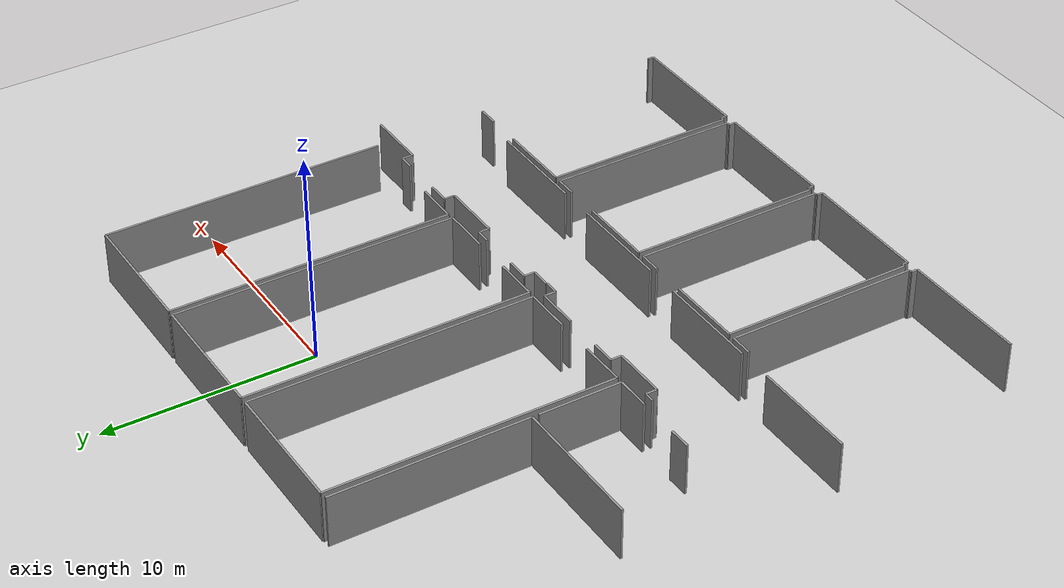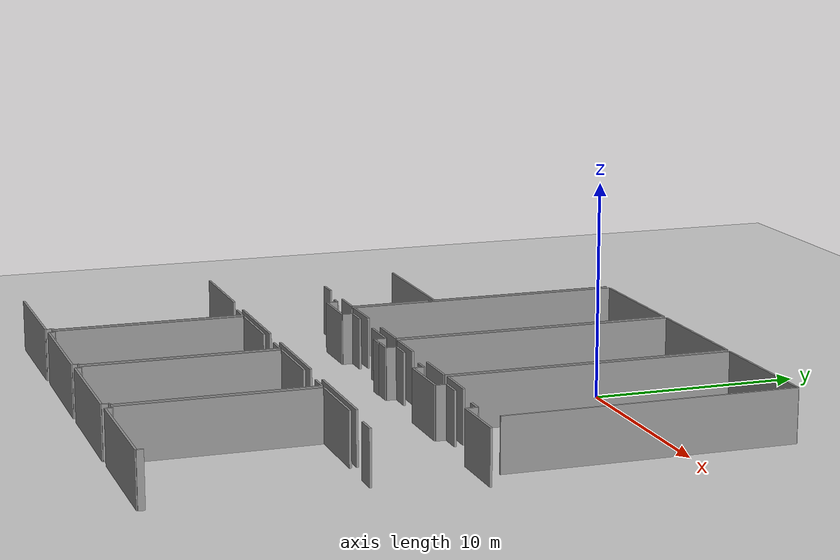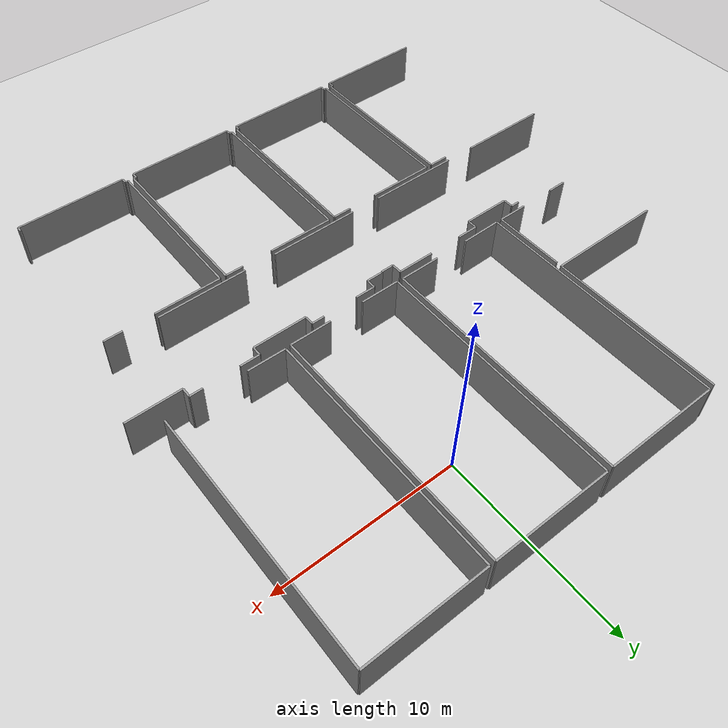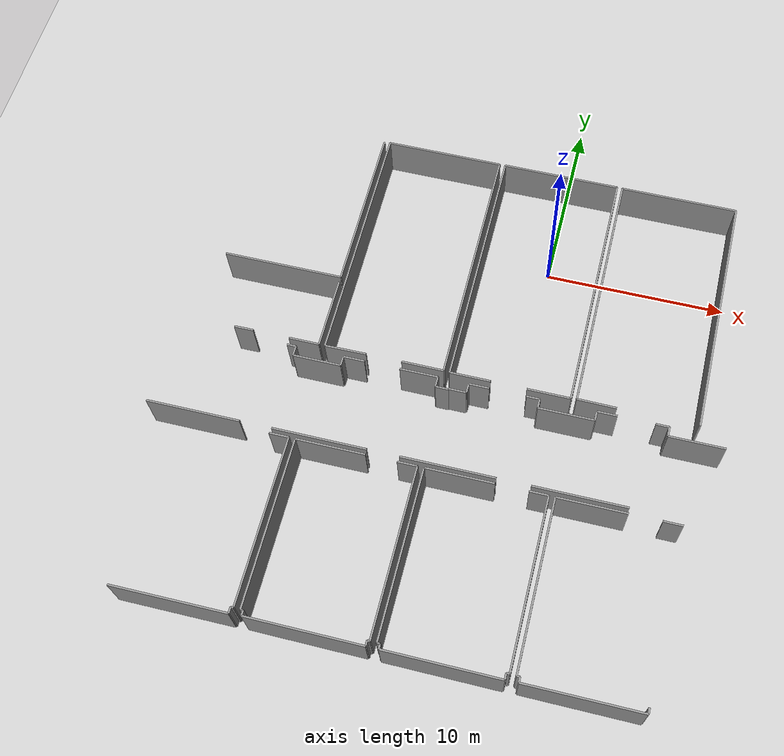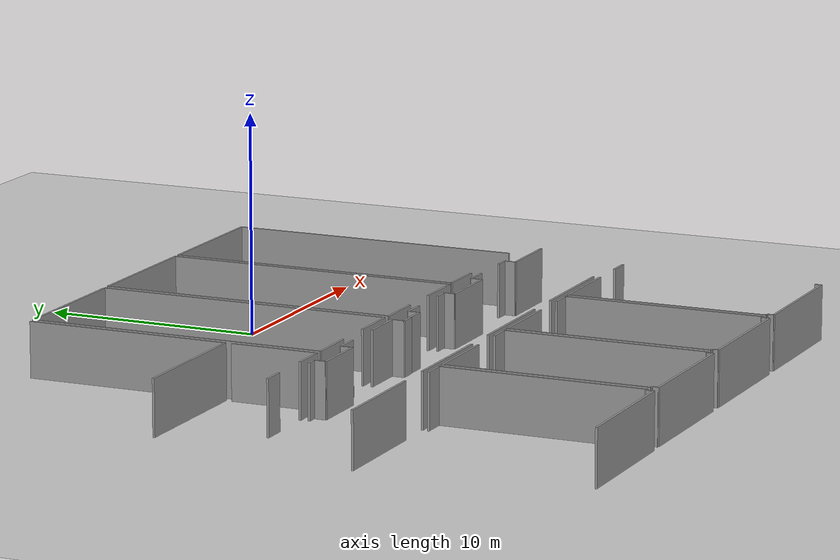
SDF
<sdf version="1.6">
 <world name="default">
  <model name="ground_plane">
   <static>1</static>
   <link name="link">
    <collision name="collision">
     <geometry><plane><normal>0 0 1</normal><size>100 100</size></plane></geometry>
     <surface><friction><ode><mu>100</mu><mu2>50</mu2></ode></friction></surface>
    </collision>
    <visual name="visual">
     <cast_shadows>0</cast_shadows>
     <geometry><plane><normal>0 0 1</normal><size>100 100</size></plane></geometry>
     <material>
      <script><uri>file://media/materials/scripts/gazebo.material</uri><name>Gazebo/Grey</name></script>
     </material>
    </visual>
   </link>
  </model>
  <model name="0510032194_A_40_1_202">
   <static>1</static>
   <link name="Wall_117">
    <collision name="Wall_117_Collision">
     <geometry><box><size>0.277529038937 0.1 2.5</size></box></geometry>
     <pose>0.138764519468 0 1.25 0 0 0</pose>
    </collision>
    <visual name="Wall_117_Visual">
     <pose>0.138764519468 0 1.25 0 0 0</pose>
     <geometry><box><size>0.277529038937 0.1 2.5</size></box></geometry>
     <material>
      <script><uri>file://media/materials/scripts/gazebo.material</uri><name>Gazebo/Grey</name></script>
      <ambient>1 1 1 1</ambient>
     </material>
    </visual>
    <pose>50.4956782949 -46.8585872057 0 0 0 1.57079632679</pose>
   </link>
   <link name="Wall_118">
    <collision name="Wall_118_Collision">
     <geometry><box><size>0.14606791523 0.1 2.5</size></box></geometry>
     <pose>0.0730339576149 0 1.25 0 0 0</pose>
    </collision>
    <visual name="Wall_118_Visual">
     <pose>0.0730339576149 0 1.25 0 0 0</pose>
     <geometry><box><size>0.14606791523 0.1 2.5</size></box></geometry>
     <material>
      <script><uri>file://media/materials/scripts/gazebo.material</uri><name>Gazebo/Grey</name></script>
      <ambient>1 1 1 1</ambient>
     </material>
    </visual>
    <pose>50.4956782949 -46.5810581668 0 0 0 3.14159265359</pose>
   </link>
   <link name="Wall_119">
    <collision name="Wall_119_Collision">
     <geometry><box><size>9.18767186795 0.1 2.5</size></box></geometry>
     <pose>4.59383593398 0 1.25 0 0 0</pose>
    </collision>
    <visual name="Wall_119_Visual">
     <pose>4.59383593398 0 1.25 0 0 0</pose>
     <geometry><box><size>9.18767186795 0.1 2.5</size></box></geometry>
     <material>
      <script><uri>file://media/materials/scripts/gazebo.material</uri><name>Gazebo/Grey</name></script>
      <ambient>1 1 1 1</ambient>
     </material>
    </visual>
    <pose>50.3496103797 -46.5810581668 0 0 0 1.57079632679</pose>
   </link>
   <link name="Wall_120">
    <collision name="Wall_120_Collision">
     <geometry><box><size>3.73933862988 0.1 2.5</size></box></geometry>
     <pose>1.86966931494 0 1.25 0 0 0</pose>
    </collision>
    <visual name="Wall_120_Visual">
     <pose>1.86966931494 0 1.25 0 0 0</pose>
     <geometry><box><size>3.73933862988 0.1 2.5</size></box></geometry>
     <material>
      <script><uri>file://media/materials/scripts/gazebo.material</uri><name>Gazebo/Grey</name></script>
      <ambient>1 1 1 1</ambient>
     </material>
    </visual>
    <pose>50.3496103797 -37.3933862988 0 0 0 0.0</pose>
   </link>
   <link name="Wall_121">
    <collision name="Wall_121_Collision">
     <geometry><box><size>1.06629578118 0.1 2.5</size></box></geometry>
     <pose>0.533147890589 0 1.25 0 0 0</pose>
    </collision>
    <visual name="Wall_121_Visual">
     <pose>0.533147890589 0 1.25 0 0 0</pose>
     <geometry><box><size>1.06629578118 0.1 2.5</size></box></geometry>
     <material>
      <script><uri>file://media/materials/scripts/gazebo.material</uri><name>Gazebo/Grey</name></script>
      <ambient>1 1 1 1</ambient>
     </material>
    </visual>
    <pose>55.7541232432 -37.3933862988 0 0 0 0.0</pose>
   </link>
   <link name="Wall_122">
    <collision name="Wall_122_Collision">
     <geometry><box><size>9.21116974997 0.1 2.5</size></box></geometry>
     <pose>4.60558487498 0 1.25 0 0 0</pose>
    </collision>
    <visual name="Wall_122_Visual">
     <pose>4.60558487498 0 1.25 0 0 0</pose>
     <geometry><box><size>9.21116974997 0.1 2.5</size></box></geometry>
     <material>
      <script><uri>file://media/materials/scripts/gazebo.material</uri><name>Gazebo/Grey</name></script>
      <ambient>1 1 1 1</ambient>
     </material>
    </visual>
    <pose>56.8204190244 -37.3933862988 0 0 0 -1.57079632679</pose>
   </link>
   <link name="Wall_123">
    <collision name="Wall_123_Collision">
     <geometry><box><size>0.132223217178 0.1 2.5</size></box></geometry>
     <pose>0.0661116085888 0 1.25 0 0 0</pose>
    </collision>
    <visual name="Wall_123_Visual">
     <pose>0.0661116085888 0 1.25 0 0 0</pose>
     <geometry><box><size>0.132223217178 0.1 2.5</size></box></geometry>
     <material>
      <script><uri>file://media/materials/scripts/gazebo.material</uri><name>Gazebo/Grey</name></script>
      <ambient>1 1 1 1</ambient>
     </material>
    </visual>
    <pose>56.8204190244 -46.6045560488 0 0 0 3.14159265359</pose>
   </link>
   <link name="Wall_124">
    <collision name="Wall_124_Collision">
     <geometry><box><size>0.288198347527 0.1 2.5</size></box></geometry>
     <pose>0.144099173764 0 1.25 0 0 0</pose>
    </collision>
    <visual name="Wall_124_Visual">
     <pose>0.144099173764 0 1.25 0 0 0</pose>
     <geometry><box><size>0.288198347527 0.1 2.5</size></box></geometry>
     <material>
      <script><uri>file://media/materials/scripts/gazebo.material</uri><name>Gazebo/Grey</name></script>
      <ambient>1 1 1 1</ambient>
     </material>
    </visual>
    <pose>56.6881958072 -46.6045560488 0 0 0 -1.57079632679</pose>
   </link>
   <link name="Wall_125">
    <collision name="Wall_125_Collision">
     <geometry><box><size>6.19261177022 0.1 2.5</size></box></geometry>
     <pose>3.09630588511 0 1.25 0 0 0</pose>
    </collision>
    <visual name="Wall_125_Visual">
     <pose>3.09630588511 0 1.25 0 0 0</pose>
     <geometry><box><size>6.19261177022 0.1 2.5</size></box></geometry>
     <material>
      <script><uri>file://media/materials/scripts/gazebo.material</uri><name>Gazebo/Grey</name></script>
      <ambient>1 1 1 1</ambient>
     </material>
    </visual>
    <pose>56.6881958072 -46.8927543963 0 0 0 3.13607521358</pose>
   </link>
   <link name="Wall_130">
    <collision name="Wall_130_Collision">
     <geometry><box><size>1.06604175002 0.1 2.5</size></box></geometry>
     <pose>0.53302087501 0 1.25 0 0 0</pose>
    </collision>
    <visual name="Wall_130_Visual">
     <pose>0.53302087501 0 1.25 0 0 0</pose>
     <geometry><box><size>1.06604175002 0.1 2.5</size></box></geometry>
     <material>
      <script><uri>file://media/materials/scripts/gazebo.material</uri><name>Gazebo/Grey</name></script>
      <ambient>1 1 1 1</ambient>
     </material>
    </visual>
    <pose>48.9377052095 -37.3844952083 0 0 0 0.0</pose>
   </link>
   <link name="Wall_131">
    <collision name="Wall_131_Collision">
     <geometry><box><size>9.18170213577 0.1 2.5</size></box></geometry>
     <pose>4.59085106788 0 1.25 0 0 0</pose>
    </collision>
    <visual name="Wall_131_Visual">
     <pose>4.59085106788 0 1.25 0 0 0</pose>
     <geometry><box><size>9.18170213577 0.1 2.5</size></box></geometry>
     <material>
      <script><uri>file://media/materials/scripts/gazebo.material</uri><name>Gazebo/Grey</name></script>
      <ambient>1 1 1 1</ambient>
     </material>
    </visual>
    <pose>50.0037469596 -37.3844952083 0 0 0 -1.57079632679</pose>
   </link>
   <link name="Wall_132">
    <collision name="Wall_132_Collision">
     <geometry><box><size>0.144035665974 0.1 2.5</size></box></geometry>
     <pose>0.0720178329872 0 1.25 0 0 0</pose>
    </collision>
    <visual name="Wall_132_Visual">
     <pose>0.0720178329872 0 1.25 0 0 0</pose>
     <geometry><box><size>0.144035665974 0.1 2.5</size></box></geometry>
     <material>
      <script><uri>file://media/materials/scripts/gazebo.material</uri><name>Gazebo/Grey</name></script>
      <ambient>1 1 1 1</ambient>
     </material>
    </visual>
    <pose>50.0037469596 -46.5661973441 0 0 0 3.14159265359</pose>
   </link>
   <link name="Wall_133">
    <collision name="Wall_133_Collision">
     <geometry><box><size>0.326557052222 0.1 2.5</size></box></geometry>
     <pose>0.163278526111 0 1.25 0 0 0</pose>
    </collision>
    <visual name="Wall_133_Visual">
     <pose>0.163278526111 0 1.25 0 0 0</pose>
     <geometry><box><size>0.326557052222 0.1 2.5</size></box></geometry>
     <material>
      <script><uri>file://media/materials/scripts/gazebo.material</uri><name>Gazebo/Grey</name></script>
      <ambient>1 1 1 1</ambient>
     </material>
    </visual>
    <pose>49.8597112936 -46.5661973441 0 0 0 -1.57079632679</pose>
   </link>
   <link name="Wall_134">
    <collision name="Wall_134_Collision">
     <geometry><box><size>6.18515794467 0.1 2.5</size></box></geometry>
     <pose>3.09257897233 0 1.25 0 0 0</pose>
    </collision>
    <visual name="Wall_134_Visual">
     <pose>3.09257897233 0 1.25 0 0 0</pose>
     <geometry><box><size>6.18515794467 0.1 2.5</size></box></geometry>
     <material>
      <script><uri>file://media/materials/scripts/gazebo.material</uri><name>Gazebo/Grey</name></script>
      <ambient>1 1 1 1</ambient>
     </material>
    </visual>
    <pose>49.8597112936 -46.8927543963 0 0 0 -3.14005248724</pose>
   </link>
   <link name="Wall_135">
    <collision name="Wall_135_Collision">
     <geometry><box><size>0.268891979601 0.1 2.5</size></box></geometry>
     <pose>0.134445989801 0 1.25 0 0 0</pose>
    </collision>
    <visual name="Wall_135_Visual">
     <pose>0.134445989801 0 1.25 0 0 0</pose>
     <geometry><box><size>0.268891979601 0.1 2.5</size></box></geometry>
     <material>
      <script><uri>file://media/materials/scripts/gazebo.material</uri><name>Gazebo/Grey</name></script>
      <ambient>1 1 1 1</ambient>
     </material>
    </visual>
    <pose>57.3317837433 -46.8831012124 0 0 0 1.57079632679</pose>
   </link>
   <link name="Wall_136">
    <collision name="Wall_136_Collision">
     <geometry><box><size>0.1633420339 0.1 2.5</size></box></geometry>
     <pose>0.0816710169502 0 1.25 0 0 0</pose>
    </collision>
    <visual name="Wall_136_Visual">
     <pose>0.0816710169502 0 1.25 0 0 0</pose>
     <geometry><box><size>0.1633420339 0.1 2.5</size></box></geometry>
     <material>
      <script><uri>file://media/materials/scripts/gazebo.material</uri><name>Gazebo/Grey</name></script>
      <ambient>1 1 1 1</ambient>
     </material>
    </visual>
    <pose>57.3317837433 -46.6142092328 0 0 0 3.14159265359</pose>
   </link>
   <link name="Wall_137">
    <collision name="Wall_137_Collision">
     <geometry><box><size>9.22006084046 0.1 2.5</size></box></geometry>
     <pose>4.61003042023 0 1.25 0 0 0</pose>
    </collision>
    <visual name="Wall_137_Visual">
     <pose>4.61003042023 0 1.25 0 0 0</pose>
     <geometry><box><size>9.22006084046 0.1 2.5</size></box></geometry>
     <material>
      <script><uri>file://media/materials/scripts/gazebo.material</uri><name>Gazebo/Grey</name></script>
      <ambient>1 1 1 1</ambient>
     </material>
    </visual>
    <pose>57.1684417094 -46.6142092328 0 0 0 1.57079632679</pose>
   </link>
   <link name="Wall_138">
    <collision name="Wall_138_Collision">
     <geometry><box><size>3.69767752015 0.1 2.5</size></box></geometry>
     <pose>1.84883876007 0 1.25 0 0 0</pose>
    </collision>
    <visual name="Wall_138_Visual">
     <pose>1.84883876007 0 1.25 0 0 0</pose>
     <geometry><box><size>3.69767752015 0.1 2.5</size></box></geometry>
     <material>
      <script><uri>file://media/materials/scripts/gazebo.material</uri><name>Gazebo/Grey</name></script>
      <ambient>1 1 1 1</ambient>
     </material>
    </visual>
    <pose>57.1684417094 -37.3941483923 0 0 0 0.0</pose>
   </link>
   <link name="Wall_139">
    <collision name="Wall_139_Collision">
     <geometry><box><size>1.01612462769 0.1 2.5</size></box></geometry>
     <pose>0.508062313843 0 1.25 0 0 0</pose>
    </collision>
    <visual name="Wall_139_Visual">
     <pose>0.508062313843 0 1.25 0 0 0</pose>
     <geometry><box><size>1.01612462769 0.1 2.5</size></box></geometry>
     <material>
      <script><uri>file://media/materials/scripts/gazebo.material</uri><name>Gazebo/Grey</name></script>
      <ambient>1 1 1 1</ambient>
     </material>
    </visual>
    <pose>62.619315259 -37.3941483923 0 0 0 0.0</pose>
   </link>
   <link name="Wall_140">
    <collision name="Wall_140_Collision">
     <geometry><box><size>9.17865376188 0.1 2.5</size></box></geometry>
     <pose>4.58932688094 0 1.25 0 0 0</pose>
    </collision>
    <visual name="Wall_140_Visual">
     <pose>4.58932688094 0 1.25 0 0 0</pose>
     <geometry><box><size>9.17865376188 0.1 2.5</size></box></geometry>
     <material>
      <script><uri>file://media/materials/scripts/gazebo.material</uri><name>Gazebo/Grey</name></script>
      <ambient>1 1 1 1</ambient>
     </material>
    </visual>
    <pose>63.6354398867 -37.3941483923 0 0 0 -1.57079632679</pose>
   </link>
   <link name="Wall_141">
    <collision name="Wall_141_Collision">
     <geometry><box><size>0.165120251999 0.1 2.5</size></box></geometry>
     <pose>0.0825601259994 0 1.25 0 0 0</pose>
    </collision>
    <visual name="Wall_141_Visual">
     <pose>0.0825601259994 0 1.25 0 0 0</pose>
     <geometry><box><size>0.165120251999 0.1 2.5</size></box></geometry>
     <material>
      <script><uri>file://media/materials/scripts/gazebo.material</uri><name>Gazebo/Grey</name></script>
      <ambient>1 1 1 1</ambient>
     </material>
    </visual>
    <pose>63.6354398867 -46.5728021542 0 0 0 3.14159265359</pose>
   </link>
   <link name="Wall_142">
    <collision name="Wall_142_Collision">
     <geometry><box><size>0.335575158293 0.1 2.5</size></box></geometry>
     <pose>0.167787579147 0 1.25 0 0 0</pose>
    </collision>
    <visual name="Wall_142_Visual">
     <pose>0.167787579147 0 1.25 0 0 0</pose>
     <geometry><box><size>0.335575158293 0.1 2.5</size></box></geometry>
     <material>
      <script><uri>file://media/materials/scripts/gazebo.material</uri><name>Gazebo/Grey</name></script>
      <ambient>1 1 1 1</ambient>
     </material>
    </visual>
    <pose>63.4703196347 -46.5728021542 0 0 0 -1.57079632679</pose>
   </link>
   <link name="Wall_143">
    <collision name="Wall_143_Collision">
     <geometry><box><size>6.13858792977 0.1 2.5</size></box></geometry>
     <pose>3.06929396489 0 1.25 0 0 0</pose>
    </collision>
    <visual name="Wall_143_Visual">
     <pose>3.06929396489 0 1.25 0 0 0</pose>
     <geometry><box><size>6.13858792977 0.1 2.5</size></box></geometry>
     <material>
      <script><uri>file://media/materials/scripts/gazebo.material</uri><name>Gazebo/Grey</name></script>
      <ambient>1 1 1 1</ambient>
     </material>
    </visual>
    <pose>63.4703196347 -46.9083773125 0 0 0 3.13747506632</pose>
   </link>
   <link name="Wall_144">
    <collision name="Wall_144_Collision">
     <geometry><box><size>0.288071331949 0.1 2.5</size></box></geometry>
     <pose>0.144035665974 0 1.25 0 0 0</pose>
    </collision>
    <visual name="Wall_144_Visual">
     <pose>0.144035665974 0 1.25 0 0 0</pose>
     <geometry><box><size>0.288071331949 0.1 2.5</size></box></geometry>
     <material>
      <script><uri>file://media/materials/scripts/gazebo.material</uri><name>Gazebo/Grey</name></script>
      <ambient>1 1 1 1</ambient>
     </material>
    </visual>
    <pose>64.1410889046 -46.8831012124 0 0 0 1.57079632679</pose>
   </link>
   <link name="Wall_145">
    <collision name="Wall_145_Collision">
     <geometry><box><size>0.172868202285 0.1 2.5</size></box></geometry>
     <pose>0.0864341011425 0 1.25 0 0 0</pose>
    </collision>
    <visual name="Wall_145_Visual">
     <pose>0.0864341011425 0 1.25 0 0 0</pose>
     <geometry><box><size>0.172868202285 0.1 2.5</size></box></geometry>
     <material>
      <script><uri>file://media/materials/scripts/gazebo.material</uri><name>Gazebo/Grey</name></script>
      <ambient>1 1 1 1</ambient>
     </material>
    </visual>
    <pose>64.1410889046 -46.5950298804 0 0 0 3.14159265359</pose>
   </link>
   <link name="Wall_146">
    <collision name="Wall_146_Collision">
     <geometry><box><size>9.19122830415 0.1 2.5</size></box></geometry>
     <pose>4.59561415208 0 1.25 0 0 0</pose>
    </collision>
    <visual name="Wall_146_Visual">
     <pose>4.59561415208 0 1.25 0 0 0</pose>
     <geometry><box><size>9.19122830415 0.1 2.5</size></box></geometry>
     <material>
      <script><uri>file://media/materials/scripts/gazebo.material</uri><name>Gazebo/Grey</name></script>
      <ambient>1 1 1 1</ambient>
     </material>
    </visual>
    <pose>63.9682207023 -46.5950298804 0 0 0 1.57079632679</pose>
   </link>
   <link name="Wall_147">
    <collision name="Wall_147_Collision">
     <geometry><box><size>3.73413099117 0.1 2.5</size></box></geometry>
     <pose>1.86706549558 0 1.25 0 0 0</pose>
    </collision>
    <visual name="Wall_147_Visual">
     <pose>1.86706549558 0 1.25 0 0 0</pose>
     <geometry><box><size>3.73413099117 0.1 2.5</size></box></geometry>
     <material>
      <script><uri>file://media/materials/scripts/gazebo.material</uri><name>Gazebo/Grey</name></script>
      <ambient>1 1 1 1</ambient>
     </material>
    </visual>
    <pose>63.9682207023 -37.4038015763 0 0 0 0.0</pose>
   </link>
   <link name="Wall_148">
    <collision name="Wall_148_Collision">
     <geometry><box><size>1.03568502677 0.1 2.5</size></box></geometry>
     <pose>0.517842513384 0 1.25 0 0 0</pose>
    </collision>
    <visual name="Wall_148_Visual">
     <pose>0.517842513384 0 1.25 0 0 0</pose>
     <geometry><box><size>1.03568502677 0.1 2.5</size></box></geometry>
     <material>
      <script><uri>file://media/materials/scripts/gazebo.material</uri><name>Gazebo/Grey</name></script>
      <ambient>1 1 1 1</ambient>
     </material>
    </visual>
    <pose>69.4354792615 -37.4038015763 0 0 0 0.0</pose>
   </link>
   <link name="Wall_151">
    <collision name="Wall_151_Collision">
     <geometry><box><size>0.304964403884 0.1 2.5</size></box></geometry>
     <pose>0.152482201942 0 1.25 0 0 0</pose>
    </collision>
    <visual name="Wall_151_Visual">
     <pose>0.152482201942 0 1.25 0 0 0</pose>
     <geometry><box><size>0.304964403884 0.1 2.5</size></box></geometry>
     <material>
      <script><uri>file://media/materials/scripts/gazebo.material</uri><name>Gazebo/Grey</name></script>
      <ambient>1 1 1 1</ambient>
     </material>
    </visual>
    <pose>70.3022335689 -46.5889331326 0 0 0 -1.57079632679</pose>
   </link>
   <link name="Wall_152">
    <collision name="Wall_152_Collision">
     <geometry><box><size>6.16115412372 0.1 2.5</size></box></geometry>
     <pose>3.08057706186 0 1.25 0 0 0</pose>
    </collision>
    <visual name="Wall_152_Visual">
     <pose>3.08057706186 0 1.25 0 0 0</pose>
     <geometry><box><size>6.16115412372 0.1 2.5</size></box></geometry>
     <material>
      <script><uri>file://media/materials/scripts/gazebo.material</uri><name>Gazebo/Grey</name></script>
      <ambient>1 1 1 1</ambient>
     </material>
    </visual>
    <pose>70.3022335689 -46.8938975365 0 0 0 3.13984033098</pose>
   </link>
   <link name="Wall_228">
    <collision name="Wall_228_Collision">
     <geometry><box><size>9.30706651171 0.1 2.5</size></box></geometry>
     <pose>4.65353325585 0 1.25 0 0 0</pose>
    </collision>
    <visual name="Wall_228_Visual">
     <pose>4.65353325585 0 1.25 0 0 0</pose>
     <geometry><box><size>9.30706651171 0.1 2.5</size></box></geometry>
     <material>
      <script><uri>file://media/materials/scripts/gazebo.material</uri><name>Gazebo/Grey</name></script>
      <ambient>1 1 1 1</ambient>
     </material>
    </visual>
    <pose>50.0061602556 -18.2818602702 0 0 0 -1.57079632679</pose>
   </link>
   <link name="Wall_229">
    <collision name="Wall_229_Collision">
     <geometry><box><size>6.58270976634 0.1 2.5</size></box></geometry>
     <pose>3.29135488317 0 1.25 0 0 0</pose>
    </collision>
    <visual name="Wall_229_Visual">
     <pose>3.29135488317 0 1.25 0 0 0</pose>
     <geometry><box><size>6.58270976634 0.1 2.5</size></box></geometry>
     <material>
      <script><uri>file://media/materials/scripts/gazebo.material</uri><name>Gazebo/Grey</name></script>
      <ambient>1 1 1 1</ambient>
     </material>
    </visual>
    <pose>50.0061602556 -27.5889267819 0 0 0 -3.14124533758</pose>
   </link>
   <link name="Wall_234">
    <collision name="Wall_234_Collision">
     <geometry><box><size>3.9574243781 0.1 2.5</size></box></geometry>
     <pose>1.97871218905 0 1.25 0 0 0</pose>
    </collision>
    <visual name="Wall_234_Visual">
     <pose>1.97871218905 0 1.25 0 0 0</pose>
     <geometry><box><size>3.9574243781 0.1 2.5</size></box></geometry>
     <material>
      <script><uri>file://media/materials/scripts/gazebo.material</uri><name>Gazebo/Grey</name></script>
      <ambient>1 1 1 1</ambient>
     </material>
    </visual>
    <pose>50.0037469596 -27.8893186249 0 0 0 -1.57079632679</pose>
   </link>
   <link name="Wall_235">
    <collision name="Wall_235_Collision">
     <geometry><box><size>1.66225287532 0.1 2.5</size></box></geometry>
     <pose>0.831126437658 0 1.25 0 0 0</pose>
    </collision>
    <visual name="Wall_235_Visual">
     <pose>0.831126437658 0 1.25 0 0 0</pose>
     <geometry><box><size>1.66225287532 0.1 2.5</size></box></geometry>
     <material>
      <script><uri>file://media/materials/scripts/gazebo.material</uri><name>Gazebo/Grey</name></script>
      <ambient>1 1 1 1</ambient>
     </material>
    </visual>
    <pose>50.0037469596 -31.846743003 0 0 0 3.14159265359</pose>
   </link>
   <link name="Wall_236">
    <collision name="Wall_236_Collision">
     <geometry><box><size>1.06927037063 0.1 2.5</size></box></geometry>
     <pose>0.534635185315 0 1.25 0 0 0</pose>
    </collision>
    <visual name="Wall_236_Visual">
     <pose>0.534635185315 0 1.25 0 0 0</pose>
     <geometry><box><size>1.06927037063 0.1 2.5</size></box></geometry>
     <material>
      <script><uri>file://media/materials/scripts/gazebo.material</uri><name>Gazebo/Grey</name></script>
      <ambient>1 1 1 1</ambient>
     </material>
    </visual>
    <pose>46.3502708607 -31.846743003 0 0 0 -3.13161436752</pose>
   </link>
   <link name="Wall_237">
    <collision name="Wall_237_Collision">
     <geometry><box><size>13.5981608144 0.1 2.5</size></box></geometry>
     <pose>6.79908040721 0 1.25 0 0 0</pose>
    </collision>
    <visual name="Wall_237_Visual">
     <pose>6.79908040721 0 1.25 0 0 0</pose>
     <geometry><box><size>13.5981608144 0.1 2.5</size></box></geometry>
     <material>
      <script><uri>file://media/materials/scripts/gazebo.material</uri><name>Gazebo/Grey</name></script>
      <ambient>1 1 1 1</ambient>
     </material>
    </visual>
    <pose>50.3374168842 -31.8544909533 0 0 0 1.57079632679</pose>
   </link>
   <link name="Wall_238">
    <collision name="Wall_238_Collision">
     <geometry><box><size>6.49494160459 0.1 2.5</size></box></geometry>
     <pose>3.24747080229 0 1.25 0 0 0</pose>
    </collision>
    <visual name="Wall_238_Visual">
     <pose>3.24747080229 0 1.25 0 0 0</pose>
     <geometry><box><size>6.49494160459 0.1 2.5</size></box></geometry>
     <material>
      <script><uri>file://media/materials/scripts/gazebo.material</uri><name>Gazebo/Grey</name></script>
      <ambient>1 1 1 1</ambient>
     </material>
    </visual>
    <pose>50.3374168842 -18.2563301389 0 0 0 0.0</pose>
   </link>
   <link name="Wall_239">
    <collision name="Wall_239_Collision">
     <geometry><box><size>13.5685661846 0.1 2.5</size></box></geometry>
     <pose>6.78428309232 0 1.25 0 0 0</pose>
    </collision>
    <visual name="Wall_239_Visual">
     <pose>6.78428309232 0 1.25 0 0 0</pose>
     <geometry><box><size>13.5685661846 0.1 2.5</size></box></geometry>
     <material>
      <script><uri>file://media/materials/scripts/gazebo.material</uri><name>Gazebo/Grey</name></script>
      <ambient>1 1 1 1</ambient>
     </material>
    </visual>
    <pose>56.8323584888 -18.2563301389 0 0 0 -1.57079632679</pose>
   </link>
   <link name="Wall_240">
    <collision name="Wall_240_Collision">
     <geometry><box><size>2.28589936556 0.1 2.5</size></box></geometry>
     <pose>1.14294968278 0 1.25 0 0 0</pose>
    </collision>
    <visual name="Wall_240_Visual">
     <pose>1.14294968278 0 1.25 0 0 0</pose>
     <geometry><box><size>2.28589936556 0.1 2.5</size></box></geometry>
     <material>
      <script><uri>file://media/materials/scripts/gazebo.material</uri><name>Gazebo/Grey</name></script>
      <ambient>1 1 1 1</ambient>
     </material>
    </visual>
    <pose>56.8323584888 -31.8248963235 0 0 0 3.14159265359</pose>
   </link>
   <link name="Wall_241">
    <collision name="Wall_241_Collision">
     <geometry><box><size>2.26919928667 0.1 2.5</size></box></geometry>
     <pose>1.13459964333 0 1.25 0 0 0</pose>
    </collision>
    <visual name="Wall_241_Visual">
     <pose>1.13459964333 0 1.25 0 0 0</pose>
     <geometry><box><size>2.26919928667 0.1 2.5</size></box></geometry>
     <material>
      <script><uri>file://media/materials/scripts/gazebo.material</uri><name>Gazebo/Grey</name></script>
      <ambient>1 1 1 1</ambient>
     </material>
    </visual>
    <pose>52.6064231778 -31.8248963235 0 0 0 -3.12855040165</pose>
   </link>
   <link name="Wall_242">
    <collision name="Wall_242_Collision">
     <geometry><box><size>13.6054007024 0.1 2.5</size></box></geometry>
     <pose>6.8027003512 0 1.25 0 0 0</pose>
    </collision>
    <visual name="Wall_242_Visual">
     <pose>6.8027003512 0 1.25 0 0 0</pose>
     <geometry><box><size>13.6054007024 0.1 2.5</size></box></geometry>
     <material>
      <script><uri>file://media/materials/scripts/gazebo.material</uri><name>Gazebo/Grey</name></script>
      <ambient>1 1 1 1</ambient>
     </material>
    </visual>
    <pose>57.1684417094 -31.8525857196 0 0 0 1.57079632679</pose>
   </link>
   <link name="Wall_243">
    <collision name="Wall_243_Collision">
     <geometry><box><size>6.50510285086 0.1 2.5</size></box></geometry>
     <pose>3.25255142543 0 1.25 0 0 0</pose>
    </collision>
    <visual name="Wall_243_Visual">
     <pose>3.25255142543 0 1.25 0 0 0</pose>
     <geometry><box><size>6.50510285086 0.1 2.5</size></box></geometry>
     <material>
      <script><uri>file://media/materials/scripts/gazebo.material</uri><name>Gazebo/Grey</name></script>
      <ambient>1 1 1 1</ambient>
     </material>
    </visual>
    <pose>57.1684417094 -18.2471850172 0 0 0 0.0</pose>
   </link>
   <link name="Wall_244">
    <collision name="Wall_244_Collision">
     <geometry><box><size>13.6073059361 0.1 2.5</size></box></geometry>
     <pose>6.80365296804 0 1.25 0 0 0</pose>
    </collision>
    <visual name="Wall_244_Visual">
     <pose>6.80365296804 0 1.25 0 0 0</pose>
     <geometry><box><size>13.6073059361 0.1 2.5</size></box></geometry>
     <material>
      <script><uri>file://media/materials/scripts/gazebo.material</uri><name>Gazebo/Grey</name></script>
      <ambient>1 1 1 1</ambient>
     </material>
    </visual>
    <pose>63.6735445602 -18.2471850172 0 0 0 -1.57079632679</pose>
   </link>
   <link name="Wall_245">
    <collision name="Wall_245_Collision">
     <geometry><box><size>2.34648579648 0.1 2.5</size></box></geometry>
     <pose>1.17324289824 0 1.25 0 0 0</pose>
    </collision>
    <visual name="Wall_245_Visual">
     <pose>1.17324289824 0 1.25 0 0 0</pose>
     <geometry><box><size>2.34648579648 0.1 2.5</size></box></geometry>
     <material>
      <script><uri>file://media/materials/scripts/gazebo.material</uri><name>Gazebo/Grey</name></script>
      <ambient>1 1 1 1</ambient>
     </material>
    </visual>
    <pose>63.6735445602 -31.8544909533 0 0 0 3.14159265359</pose>
   </link>
   <link name="Wall_246">
    <collision name="Wall_246_Collision">
     <geometry><box><size>2.21324727472 0.1 2.5</size></box></geometry>
     <pose>1.10662363736 0 1.25 0 0 0</pose>
    </collision>
    <visual name="Wall_246_Visual">
     <pose>1.10662363736 0 1.25 0 0 0</pose>
     <geometry><box><size>2.21324727472 0.1 2.5</size></box></geometry>
     <material>
      <script><uri>file://media/materials/scripts/gazebo.material</uri><name>Gazebo/Grey</name></script>
      <ambient>1 1 1 1</ambient>
     </material>
    </visual>
    <pose>59.3816881641 -31.8544909533 0 0 0 3.14073182166</pose>
   </link>
   <link name="Wall_247">
    <collision name="Wall_247_Collision">
     <geometry><box><size>13.5572617982 0.1 2.5</size></box></geometry>
     <pose>6.77863089908 0 1.25 0 0 0</pose>
    </collision>
    <visual name="Wall_247_Visual">
     <pose>6.77863089908 0 1.25 0 0 0</pose>
     <geometry><box><size>13.5572617982 0.1 2.5</size></box></geometry>
     <material>
      <script><uri>file://media/materials/scripts/gazebo.material</uri><name>Gazebo/Grey</name></script>
      <ambient>1 1 1 1</ambient>
     </material>
    </visual>
    <pose>63.9783819485 -31.8135919371 0 0 0 1.57079632679</pose>
   </link>
   <link name="Wall_248">
    <collision name="Wall_248_Collision">
     <geometry><box><size>6.48439931158 0.1 2.5</size></box></geometry>
     <pose>3.24219965579 0 1.25 0 0 0</pose>
    </collision>
    <visual name="Wall_248_Visual">
     <pose>3.24219965579 0 1.25 0 0 0</pose>
     <geometry><box><size>6.48439931158 0.1 2.5</size></box></geometry>
     <material>
      <script><uri>file://media/materials/scripts/gazebo.material</uri><name>Gazebo/Grey</name></script>
      <ambient>1 1 1 1</ambient>
     </material>
    </visual>
    <pose>63.9783819485 -18.2563301389 0 0 0 0.0</pose>
   </link>
   <link name="Wall_249">
    <collision name="Wall_249_Collision">
     <geometry><box><size>13.5826649139 0.1 2.5</size></box></geometry>
     <pose>6.79133245693 0 1.25 0 0 0</pose>
    </collision>
    <visual name="Wall_249_Visual">
     <pose>6.79133245693 0 1.25 0 0 0</pose>
     <geometry><box><size>13.5826649139 0.1 2.5</size></box></geometry>
     <material>
      <script><uri>file://media/materials/scripts/gazebo.material</uri><name>Gazebo/Grey</name></script>
      <ambient>1 1 1 1</ambient>
     </material>
    </visual>
    <pose>70.4627812601 -18.2563301389 0 0 0 -1.57079632679</pose>
   </link>
   <link name="Wall_251">
    <collision name="Wall_251_Collision">
     <geometry><box><size>2.12702756159 0.1 2.5</size></box></geometry>
     <pose>1.0635137808 0 1.25 0 0 0</pose>
    </collision>
    <visual name="Wall_251_Visual">
     <pose>1.0635137808 0 1.25 0 0 0</pose>
     <geometry><box><size>2.12702756159 0.1 2.5</size></box></geometry>
     <material>
      <script><uri>file://media/materials/scripts/gazebo.material</uri><name>Gazebo/Grey</name></script>
      <ambient>1 1 1 1</ambient>
     </material>
    </visual>
    <pose>66.1052578099 -31.8389950527 0 0 0 3.12964935766</pose>
   </link>
   <link name="Wall_351">
    <collision name="Wall_351_Collision">
     <geometry><box><size>0.493836569055 0.1 2.5</size></box></geometry>
     <pose>0.246918284528 0 1.25 0 0 0</pose>
    </collision>
    <visual name="Wall_351_Visual">
     <pose>0.246918284528 0 1.25 0 0 0</pose>
     <geometry><box><size>0.493836569055 0.1 2.5</size></box></geometry>
     <material>
      <script><uri>file://media/materials/scripts/gazebo.material</uri><name>Gazebo/Grey</name></script>
      <ambient>1 1 1 1</ambient>
     </material>
    </visual>
    <pose>48.3559738602 -32.2517956827 0 0 0 0.0</pose>
   </link>
   <link name="Wall_352">
    <collision name="Wall_352_Collision">
     <geometry><box><size>0.54045128635 0.1 2.5</size></box></geometry>
     <pose>0.270225643175 0 1.25 0 0 0</pose>
    </collision>
    <visual name="Wall_352_Visual">
     <pose>0.270225643175 0 1.25 0 0 0</pose>
     <geometry><box><size>0.54045128635 0.1 2.5</size></box></geometry>
     <material>
      <script><uri>file://media/materials/scripts/gazebo.material</uri><name>Gazebo/Grey</name></script>
      <ambient>1 1 1 1</ambient>
     </material>
    </visual>
    <pose>48.8498104292 -32.2517956827 0 0 0 -1.57079632679</pose>
   </link>
   <link name="Wall_353">
    <collision name="Wall_353_Collision">
     <geometry><box><size>2.61753704092 0.1 2.5</size></box></geometry>
     <pose>1.30876852046 0 1.25 0 0 0</pose>
    </collision>
    <visual name="Wall_353_Visual">
     <pose>1.30876852046 0 1.25 0 0 0</pose>
     <geometry><box><size>2.61753704092 0.1 2.5</size></box></geometry>
     <material>
      <script><uri>file://media/materials/scripts/gazebo.material</uri><name>Gazebo/Grey</name></script>
      <ambient>1 1 1 1</ambient>
     </material>
    </visual>
    <pose>48.8498104292 -32.7922469691 0 0 0 0.0</pose>
   </link>
   <link name="Wall_354">
    <collision name="Wall_354_Collision">
     <geometry><box><size>0.534100507427 0.1 2.5</size></box></geometry>
     <pose>0.267050253714 0 1.25 0 0 0</pose>
    </collision>
    <visual name="Wall_354_Visual">
     <pose>0.267050253714 0 1.25 0 0 0</pose>
     <geometry><box><size>0.534100507427 0.1 2.5</size></box></geometry>
     <material>
      <script><uri>file://media/materials/scripts/gazebo.material</uri><name>Gazebo/Grey</name></script>
      <ambient>1 1 1 1</ambient>
     </material>
    </visual>
    <pose>51.4673474702 -32.7922469691 0 0 0 1.57079632679</pose>
   </link>
   <link name="Wall_355">
    <collision name="Wall_355_Collision">
     <geometry><box><size>1.16854332184 0.1 2.5</size></box></geometry>
     <pose>0.584271660919 0 1.25 0 0 0</pose>
    </collision>
    <visual name="Wall_355_Visual">
     <pose>0.584271660919 0 1.25 0 0 0</pose>
     <geometry><box><size>1.16854332184 0.1 2.5</size></box></geometry>
     <material>
      <script><uri>file://media/materials/scripts/gazebo.material</uri><name>Gazebo/Grey</name></script>
      <ambient>1 1 1 1</ambient>
     </material>
    </visual>
    <pose>51.4673474702 -32.2581464617 0 0 0 0.0</pose>
   </link>
   <link name="Wall_356">
    <collision name="Wall_356_Collision">
     <geometry><box><size>2.07645067668 0.1 2.5</size></box></geometry>
     <pose>1.03822533834 0 1.25 0 0 0</pose>
    </collision>
    <visual name="Wall_356_Visual">
     <pose>1.03822533834 0 1.25 0 0 0</pose>
     <geometry><box><size>2.07645067668 0.1 2.5</size></box></geometry>
     <material>
      <script><uri>file://media/materials/scripts/gazebo.material</uri><name>Gazebo/Grey</name></script>
      <ambient>1 1 1 1</ambient>
     </material>
    </visual>
    <pose>54.5566203695 -32.2581464617 0 0 0 0.0</pose>
   </link>
   <link name="Wall_357">
    <collision name="Wall_357_Collision">
     <geometry><box><size>0.569029791504 0.1 2.5</size></box></geometry>
     <pose>0.284514895752 0 1.25 0 0 0</pose>
    </collision>
    <visual name="Wall_357_Visual">
     <pose>0.284514895752 0 1.25 0 0 0</pose>
     <geometry><box><size>0.569029791504 0.1 2.5</size></box></geometry>
     <material>
      <script><uri>file://media/materials/scripts/gazebo.material</uri><name>Gazebo/Grey</name></script>
      <ambient>1 1 1 1</ambient>
     </material>
    </visual>
    <pose>56.6330710462 -32.2581464617 0 0 0 -1.57079632679</pose>
   </link>
   <link name="Wall_358">
    <collision name="Wall_358_Collision">
     <geometry><box><size>0.713446504214 0.1 2.5</size></box></geometry>
     <pose>0.356723252107 0 1.25 0 0 0</pose>
    </collision>
    <visual name="Wall_358_Visual">
     <pose>0.356723252107 0 1.25 0 0 0</pose>
     <geometry><box><size>0.713446504214 0.1 2.5</size></box></geometry>
     <material>
      <script><uri>file://media/materials/scripts/gazebo.material</uri><name>Gazebo/Grey</name></script>
      <ambient>1 1 1 1</ambient>
     </material>
    </visual>
    <pose>56.6330710462 -32.8271762532 0 0 0 0.0</pose>
   </link>
   <link name="Wall_359">
    <collision name="Wall_359_Collision">
     <geometry><box><size>0.0363264554398 0.1 2.5</size></box></geometry>
     <pose>0.0181632277199 0 1.25 0 0 0</pose>
    </collision>
    <visual name="Wall_359_Visual">
     <pose>0.0181632277199 0 1.25 0 0 0</pose>
     <geometry><box><size>0.0363264554398 0.1 2.5</size></box></geometry>
     <material>
      <script><uri>file://media/materials/scripts/gazebo.material</uri><name>Gazebo/Grey</name></script>
      <ambient>1 1 1 1</ambient>
     </material>
    </visual>
    <pose>57.3465175504 -32.8271762532 0 0 0 1.57079632679</pose>
   </link>
   <link name="Wall_360">
    <collision name="Wall_360_Collision">
     <geometry><box><size>0.951346682671 0.1 2.5</size></box></geometry>
     <pose>0.475673341335 0 1.25 0 0 0</pose>
    </collision>
    <visual name="Wall_360_Visual">
     <pose>0.475673341335 0 1.25 0 0 0</pose>
     <geometry><box><size>0.951346682671 0.1 2.5</size></box></geometry>
     <material>
      <script><uri>file://media/materials/scripts/gazebo.material</uri><name>Gazebo/Grey</name></script>
      <ambient>1 1 1 1</ambient>
     </material>
    </visual>
    <pose>57.3465175504 -32.7908497977 0 0 0 0.0</pose>
   </link>
   <link name="Wall_361">
    <collision name="Wall_361_Collision">
     <geometry><box><size>0.51568324855 0.1 2.5</size></box></geometry>
     <pose>0.257841624275 0 1.25 0 0 0</pose>
    </collision>
    <visual name="Wall_361_Visual">
     <pose>0.257841624275 0 1.25 0 0 0</pose>
     <geometry><box><size>0.51568324855 0.1 2.5</size></box></geometry>
     <material>
      <script><uri>file://media/materials/scripts/gazebo.material</uri><name>Gazebo/Grey</name></script>
      <ambient>1 1 1 1</ambient>
     </material>
    </visual>
    <pose>58.297864233 -32.7908497977 0 0 0 1.57079632679</pose>
   </link>
   <link name="Wall_362">
    <collision name="Wall_362_Collision">
     <geometry><box><size>1.10846495323 0.1 2.5</size></box></geometry>
     <pose>0.554232476613 0 1.25 0 0 0</pose>
    </collision>
    <visual name="Wall_362_Visual">
     <pose>0.554232476613 0 1.25 0 0 0</pose>
     <geometry><box><size>1.10846495323 0.1 2.5</size></box></geometry>
     <material>
      <script><uri>file://media/materials/scripts/gazebo.material</uri><name>Gazebo/Grey</name></script>
      <ambient>1 1 1 1</ambient>
     </material>
    </visual>
    <pose>58.297864233 -32.2751665492 0 0 0 0.0</pose>
   </link>
   <link name="Wall_363">
    <collision name="Wall_363_Collision">
     <geometry><box><size>0.702904211202 0.1 2.5</size></box></geometry>
     <pose>0.351452105601 0 1.25 0 0 0</pose>
    </collision>
    <visual name="Wall_363_Visual">
     <pose>0.351452105601 0 1.25 0 0 0</pose>
     <geometry><box><size>0.702904211202 0.1 2.5</size></box></geometry>
     <material>
      <script><uri>file://media/materials/scripts/gazebo.material</uri><name>Gazebo/Grey</name></script>
      <ambient>1 1 1 1</ambient>
     </material>
    </visual>
    <pose>61.3997116746 -32.2751665492 0 0 0 0.0</pose>
   </link>
   <link name="Wall_364">
    <collision name="Wall_364_Collision">
     <geometry><box><size>0.511237703304 0.1 2.5</size></box></geometry>
     <pose>0.255618851652 0 1.25 0 0 0</pose>
    </collision>
    <visual name="Wall_364_Visual">
     <pose>0.255618851652 0 1.25 0 0 0</pose>
     <geometry><box><size>0.511237703304 0.1 2.5</size></box></geometry>
     <material>
      <script><uri>file://media/materials/scripts/gazebo.material</uri><name>Gazebo/Grey</name></script>
      <ambient>1 1 1 1</ambient>
     </material>
    </visual>
    <pose>62.1026158858 -32.2751665492 0 0 0 -1.57079632679</pose>
   </link>
   <link name="Wall_365">
    <collision name="Wall_365_Collision">
     <geometry><box><size>3.02360584526 0.1 2.5</size></box></geometry>
     <pose>1.51180292263 0 1.25 0 0 0</pose>
    </collision>
    <visual name="Wall_365_Visual">
     <pose>1.51180292263 0 1.25 0 0 0</pose>
     <geometry><box><size>3.02360584526 0.1 2.5</size></box></geometry>
     <material>
      <script><uri>file://media/materials/scripts/gazebo.material</uri><name>Gazebo/Grey</name></script>
      <ambient>1 1 1 1</ambient>
     </material>
    </visual>
    <pose>62.1026158858 -32.7864042525 0 0 0 0.0</pose>
   </link>
   <link name="Wall_366">
    <collision name="Wall_366_Collision">
     <geometry><box><size>0.516318326443 0.1 2.5</size></box></geometry>
     <pose>0.258159163221 0 1.25 0 0 0</pose>
    </collision>
    <visual name="Wall_366_Visual">
     <pose>0.258159163221 0 1.25 0 0 0</pose>
     <geometry><box><size>0.516318326443 0.1 2.5</size></box></geometry>
     <material>
      <script><uri>file://media/materials/scripts/gazebo.material</uri><name>Gazebo/Grey</name></script>
      <ambient>1 1 1 1</ambient>
     </material>
    </visual>
    <pose>65.1262217311 -32.7864042525 0 0 0 1.57079632679</pose>
   </link>
   <link name="Wall_367">
    <collision name="Wall_367_Collision">
     <geometry><box><size>1.09398517728 0.1 2.5</size></box></geometry>
     <pose>0.546992588641 0 1.25 0 0 0</pose>
    </collision>
    <visual name="Wall_367_Visual">
     <pose>0.546992588641 0 1.25 0 0 0</pose>
     <geometry><box><size>1.09398517728 0.1 2.5</size></box></geometry>
     <material>
      <script><uri>file://media/materials/scripts/gazebo.material</uri><name>Gazebo/Grey</name></script>
      <ambient>1 1 1 1</ambient>
     </material>
    </visual>
    <pose>65.1262217311 -32.270085926 0 0 0 0.0</pose>
   </link>
   <link name="Wall_368">
    <collision name="Wall_368_Collision">
     <geometry><box><size>0.718908174088 0.1 2.5</size></box></geometry>
     <pose>0.359454087044 0 1.25 0 0 0</pose>
    </collision>
    <visual name="Wall_368_Visual">
     <pose>0.359454087044 0 1.25 0 0 0</pose>
     <geometry><box><size>0.718908174088 0.1 2.5</size></box></geometry>
     <material>
      <script><uri>file://media/materials/scripts/gazebo.material</uri><name>Gazebo/Grey</name></script>
      <ambient>1 1 1 1</ambient>
     </material>
    </visual>
    <pose>68.218034942 -32.270085926 0 0 0 0.0</pose>
   </link>
   <link name="Wall_369">
    <collision name="Wall_369_Collision">
     <geometry><box><size>0.523685229993 0.1 2.5</size></box></geometry>
     <pose>0.261842614997 0 1.25 0 0 0</pose>
    </collision>
    <visual name="Wall_369_Visual">
     <pose>0.261842614997 0 1.25 0 0 0</pose>
     <geometry><box><size>0.523685229993 0.1 2.5</size></box></geometry>
     <material>
      <script><uri>file://media/materials/scripts/gazebo.material</uri><name>Gazebo/Grey</name></script>
      <ambient>1 1 1 1</ambient>
     </material>
    </visual>
    <pose>68.9369431161 -32.270085926 0 0 0 -1.57079632679</pose>
   </link>
   <link name="Wall_370">
    <collision name="Wall_370_Collision">
     <geometry><box><size>3.02195464274 0.1 2.5</size></box></geometry>
     <pose>1.51097732137 0 1.25 0 0 0</pose>
    </collision>
    <visual name="Wall_370_Visual">
     <pose>1.51097732137 0 1.25 0 0 0</pose>
     <geometry><box><size>3.02195464274 0.1 2.5</size></box></geometry>
     <material>
      <script><uri>file://media/materials/scripts/gazebo.material</uri><name>Gazebo/Grey</name></script>
      <ambient>1 1 1 1</ambient>
     </material>
    </visual>
    <pose>68.9369431161 -32.793771156 0 0 0 0.0</pose>
   </link>
   <link name="Wall_428">
    <collision name="Wall_428_Collision">
     <geometry><box><size>5.0171153492 0.1 2.5</size></box></geometry>
     <pose>2.5085576746 0 1.25 0 0 0</pose>
    </collision>
    <visual name="Wall_428_Visual">
     <pose>2.5085576746 0 1.25 0 0 0</pose>
     <geometry><box><size>5.0171153492 0.1 2.5</size></box></geometry>
     <material>
      <script><uri>file://media/materials/scripts/gazebo.material</uri><name>Gazebo/Grey</name></script>
      <ambient>1 1 1 1</ambient>
     </material>
    </visual>
    <pose>67.6872368396 -37.0964238764 0 0 0 3.14159265359</pose>
   </link>
   <link name="Wall_429">
    <collision name="Wall_429_Collision">
     <geometry><box><size>5.06576231575 0.1 2.5</size></box></geometry>
     <pose>2.53288115787 0 1.25 0 0 0</pose>
    </collision>
    <visual name="Wall_429_Visual">
     <pose>2.53288115787 0 1.25 0 0 0</pose>
     <geometry><box><size>5.06576231575 0.1 2.5</size></box></geometry>
     <material>
      <script><uri>file://media/materials/scripts/gazebo.material</uri><name>Gazebo/Grey</name></script>
      <ambient>1 1 1 1</ambient>
     </material>
    </visual>
    <pose>60.8643410114 -37.0964238764 0 0 0 3.14159265359</pose>
   </link>
   <link name="Wall_430">
    <collision name="Wall_430_Collision">
     <geometry><box><size>5.08176627863 0.1 2.5</size></box></geometry>
     <pose>2.54088313932 0 1.25 0 0 0</pose>
    </collision>
    <visual name="Wall_430_Visual">
     <pose>2.54088313932 0 1.25 0 0 0</pose>
     <geometry><box><size>5.08176627863 0.1 2.5</size></box></geometry>
     <material>
      <script><uri>file://media/materials/scripts/gazebo.material</uri><name>Gazebo/Grey</name></script>
      <ambient>1 1 1 1</ambient>
     </material>
    </visual>
    <pose>54.067737408 -37.0964238764 0 0 0 3.14159265359</pose>
   </link>
   <link name="Wall_431">
    <collision name="Wall_431_Collision">
     <geometry><box><size>5.10018353751 0.1 2.5</size></box></geometry>
     <pose>2.55009176876 0 1.25 0 0 0</pose>
    </collision>
    <visual name="Wall_431_Visual">
     <pose>2.55009176876 0 1.25 0 0 0</pose>
     <geometry><box><size>5.10018353751 0.1 2.5</size></box></geometry>
     <material>
      <script><uri>file://media/materials/scripts/gazebo.material</uri><name>Gazebo/Grey</name></script>
      <ambient>1 1 1 1</ambient>
     </material>
    </visual>
    <pose>47.2680854307 -37.0964238764 0 0 0 3.14159265359</pose>
   </link>
   <pose>-60.9 23.465744216 0 0 0 0</pose>
  </model>
 </world>
</sdf>
